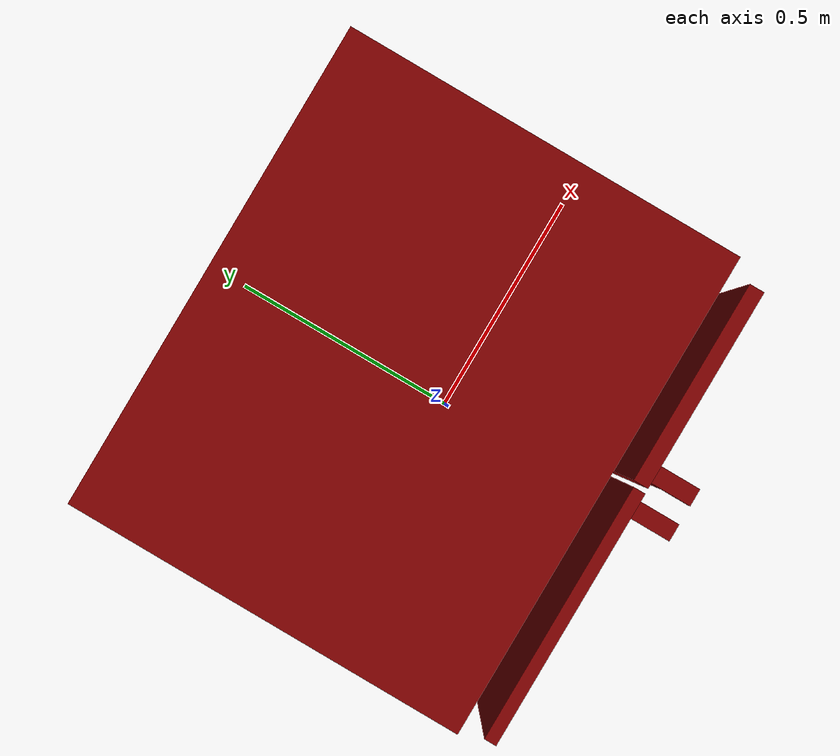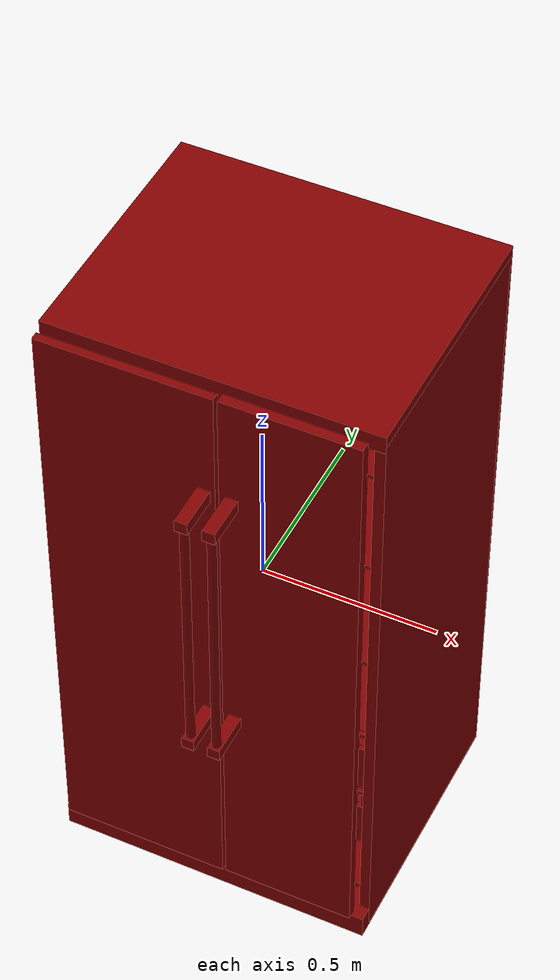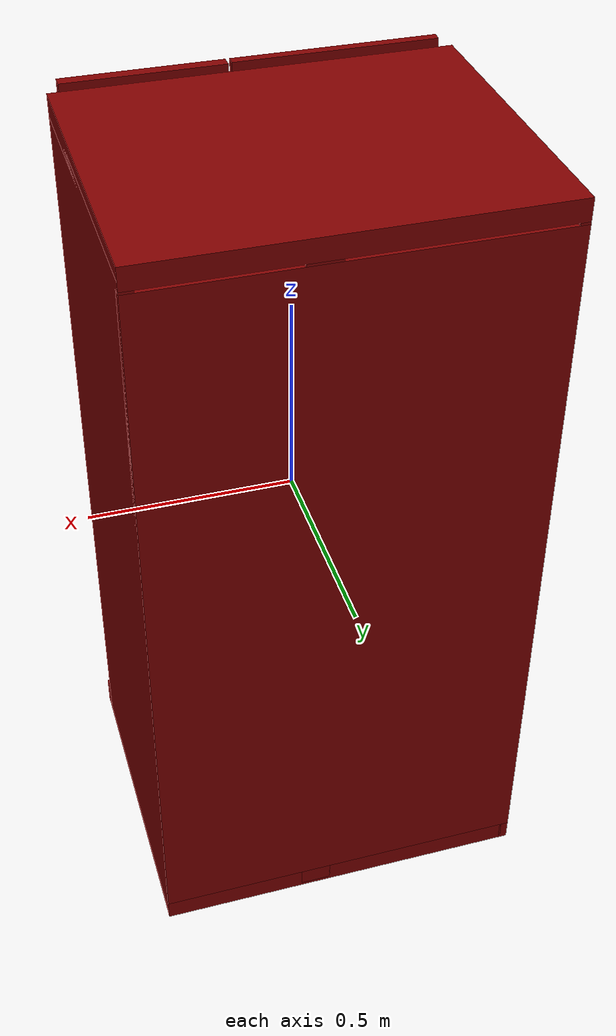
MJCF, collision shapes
<mujoco model="model">
  <compiler angle="radian"/>
  <asset>
    <mesh file="visuals/Body001.obj" name="Body001_vis"/>
    <mesh file="visuals/Body001_Clear.obj" name="Body001_Clear_vis"/>
    <mesh file="visuals/Body002.obj" name="Body002_vis"/>
    <mesh file="visuals/Door001.obj" name="Door001_vis"/>
    <mesh file="visuals/Door001_Clear.obj" name="Door001_Clear_vis"/>
    <mesh file="visuals/Door002.obj" name="Door002_vis"/>
    <mesh file="visuals/Drawer001.obj" name="Drawer001_vis"/>
    <mesh file="visuals/Drawer002.obj" name="Drawer002_vis"/>
    <texture file="visuals/T_BC001.png" name="Body001_material" type="2d"/>
    <material name="Body001_material" rgba="1 1 1 1.0" texture="Body001_material" shininess="2" specular="2"/>
    <material name="Body001_Clear_material" rgba="0.5 0.5 0.5 0.8373495936393738" shininess="0.4472135901451111" specular="0.3103448502657381"/>
    <texture file="visuals/T_BC001.png" name="Body002_material" type="2d"/>
    <material name="Body002_material" rgba="1 1 1 1.0" texture="Body002_material" shininess="0.4291412830352783" specular="0.3103448502657381"/>
    <texture file="visuals/T_BC001.png" name="Door001_material" type="2d"/>
    <material name="Door001_material" rgba="1 1 1 1.0" texture="Door001_material" shininess="2" specular="2"/>
    <material name="Door001_Clear_material" rgba="0.5 0.5 0.5 0.8373495936393738" shininess="0.4472135901451111" specular="0.3103448502657381"/>
    <texture file="visuals/T_BC001.png" name="Door002_material" type="2d"/>
    <material name="Door002_material" rgba="1 1 1 1.0" texture="Door002_material" shininess="2" specular="2"/>
    <texture file="visuals/T_BC001.png" name="Drawer001_material" type="2d"/>
    <material name="Drawer001_material" rgba="1 1 1 1.0" texture="Drawer001_material" shininess="0.4291412830352783" specular="0.3103448502657381"/>
    <texture file="visuals/T_BC001.png" name="Drawer002_material" type="2d"/>
    <material name="Drawer002_material" rgba="1 1 1 1.0" texture="Drawer002_material" shininess="0.4291412830352783" specular="0.3103448502657381"/>
  </asset>
  <default>
    <default class="visual">
      <geom conaffinity="0" contype="0" group="1" type="mesh"/>
    </default>
    <default class="collision">
      <geom group="0" rgba="0.5 0 0 0.5"/>
    </default>
    <default class="spawn">
      <geom group="0" rgba="1 1 1 0.5" contype="0" conaffinity="0"/>
      <site group="0" rgba="1 1 1 0.5"/>
    </default>
    <default class="region">
      <geom group="1" conaffinity="0" contype="0" rgba="0 1 0 0"/>
    </default>
  </default>
  <worldbody>
    <body>
      <body name="object">
        <geom mesh="Body001_vis" type="mesh" solimp="0.998 0.998 0.001" solref="0.001 1" density="100" friction="0.95 0.3 0.1" class="visual" material="Body001_material"/>
        <geom class="collision" type="box" pos="-3.14321368932724e-09 0.4564071595668793 -0.009512280113995075" size="0.4595121145248413 0.012431871145963669 0.8904070258140564" quat="1.0 0.0 0.0 0.0"/>
        <geom class="collision" type="box" pos="-0.44824686646461487 0.09380289912223816 -0.018721602857112885" size="0.011265265755355358 0.3750278353691101 0.925417423248291" quat="1.0 0.0 0.0 0.0"/>
        <geom class="collision" type="box" pos="0.4446006715297699 0.09380240738391876 -0.01872161403298378" size="0.014911462552845478 0.3750283718109131 0.9254194498062134" quat="1.0 0.0 0.0 0.0"/>
        <geom class="collision" type="box" pos="-3.14321368932724e-09 0.12114506214857101 -0.9064209461212158" size="0.4595121145248413 0.3476858139038086 0.045889873057603836" quat="1.0 0.0 0.0 0.0"/>
        <geom class="collision" type="box" pos="-3.14321368932724e-09 0.027813946828246117 -0.9153845310211182" size="0.4595121145248413 0.34951251745224 0.03692631796002388" quat="1.0 0.0 0.0 0.0"/>
        <geom class="collision" type="box" pos="0.07150134444236755 0.1211441233754158 -0.018721602857112885" size="0.037420690059661865 0.34768691658973694 0.9254255890846252" quat="1.0 0.0 0.0 0.0"/>
        <geom class="collision" type="box" pos="-3.14321368932724e-09 0.09380055218935013 0.9125056266784668" size="0.4595121145248413 0.37503060698509216 0.025865834206342697" quat="1.0 0.0 0.0 0.0"/>
        <geom class="collision" type="box" pos="-0.20137891173362732 0.1622304469347 0.5440387725830078" size="0.23340408504009247 0.22307993471622467 0.0060075754299759865" quat="1.0 0.0 0.0 0.0"/>
        <geom class="collision" type="box" pos="-0.20145899057388306 0.15250565111637115 0.22739364206790924" size="0.23340408504009247 0.22307993471622467 0.0060075754299759865" quat="1.0 0.0 0.0 0.0"/>
        <geom class="collision" type="box" pos="-0.20145899057388306 0.16216318309307098 -0.14820696413516998" size="0.23340408504009247 0.22307993471622467 0.0060075754299759865" quat="1.0 0.0 0.0 0.0"/>
        <geom class="collision" type="box" pos="-0.20145899057388306 0.16216318309307098 -0.4992179572582245" size="0.23340408504009247 0.22307993471622467 0.0060075754299759865" quat="1.0 0.0 0.0 0.0"/>
        <body name="Body001_Clear">
          <geom mesh="Body001_Clear_vis" type="mesh" solimp="0.998 0.998 0.001" solref="0.001 1" density="100" friction="0.95 0.3 0.1" class="visual" material="Body001_Clear_material"/>
          <geom class="collision" type="box" pos="0.2683153450489044 0.16216318309307098 0.22448477149009705" size="0.1583569496870041 0.22307993471622467 0.0060075754299759865" quat="1.0 0.0 0.0 0.0"/>
          <geom class="collision" type="box" pos="0.2683153450489044 0.16216318309307098 0.5535956621170044" size="0.1583569496870041 0.22307993471622467 0.0060075754299759865" quat="1.0 0.0 0.0 0.0"/>
          <geom class="collision" type="box" pos="0.2683153450489044 0.16216318309307098 -0.14546270668506622" size="0.1583569496870041 0.22307993471622467 0.0060075754299759865" quat="1.0 0.0 0.0 0.0"/>
        </body>
        <body name="Body002">
          <geom mesh="Body002_vis" type="mesh" solimp="0.998 0.998 0.001" solref="0.001 1" density="100" friction="0.95 0.3 0.1" class="visual" material="Body002_material"/>
        </body>
        <body name="Door001">
          <joint axis="0.0 0.0 -1.0" pos="-0.4357980489730835 -0.3228433430194855 0.04106411337852478" limited="true" name="Door001_joint" range="0.0 1.5707963267948966" type="hinge" damping="1" frictionloss="1" armature=".01" stiffness="0.05"/>
          <geom mesh="Door001_vis" type="mesh" solimp="0.998 0.998 0.001" solref="0.001 1" density="100" friction="0.95 0.3 0.1" class="visual" material="Door001_material"/>
          <geom class="collision" type="box" pos="-0.20054519176483154 -0.33403870463371277 0.038020651787519455" size="0.24239735305309296 0.0113755464553833 0.9025313258171082" quat="1.0 0.0 0.0 0.0"/>
          <geom class="collision" type="box" pos="0.011547052301466465 -0.4070349335670471 0.6107343435287476" size="0.01786612533032894 0.06237141415476799 0.01799345202744007" quat="1.0 0.0 0.0 0.0"/>
          <geom class="collision" type="cylinder" pos="0.011486728675663471 -0.4513147473335266 0.20231615006923676" size="0.012440330348908901 0.3878135085105896" quat="1.0 0.0 0.0 0.0"/>
          <geom class="collision" type="box" pos="0.011547052301466465 -0.4070349335670471 -0.20125801861286163" size="0.01786607690155506 0.06237130984663963 0.017993396148085594" quat="1.0 0.0 0.0 0.0"/>
          <body name="Door001_Clear">
            <geom mesh="Door001_Clear_vis" type="mesh" solimp="0.998 0.998 0.001" solref="0.001 1" density="100" friction="0.95 0.3 0.1" class="visual" material="Door001_Clear_material"/>
            <geom class="collision" type="box" pos="-0.20968464016914368 -0.32837197184562683 0.5243414640426636" size="0.21956045925617218 0.0032243402674794197 0.03886110335588455" quat="1.0 0.0 0.0 0.0"/>
            <geom class="collision" type="box" pos="-0.4241691827774048 -0.2773961126804352 0.5243414640426636" size="0.005123035982251167 0.054292209446430206 0.038861196488142014" quat="1.0 0.0 0.0 0.0"/>
            <geom class="collision" type="box" pos="-0.20968464016914368 -0.2263183891773224 0.5243414640426636" size="0.21956202387809753 0.003224362852051854 0.038861289620399475" quat="1.0 0.0 0.0 0.0"/>
            <geom class="collision" type="box" pos="0.005859863478690386 -0.2773961126804352 0.5243414640426636" size="0.005123060662299395 0.05429258570075035 0.03886138275265694" quat="1.0 0.0 0.0 0.0"/>
            <geom class="collision" type="box" pos="-0.2090894877910614 -0.2773961126804352 0.48891374468803406" size="0.2200864851474762 0.054292768239974976 0.0034381297882646322" quat="1.0 0.0 0.0 0.0"/>
            <geom class="collision" type="box" pos="-0.2090894877910614 -0.27739617228507996 -0.11951662600040436" size="0.22008799016475677 0.054293155670166016 0.0034381533041596413" quat="1.0 0.0 0.0 0.0"/>
            <geom class="collision" type="box" pos="0.005859863478690386 -0.2773961126804352 -0.08408892154693604" size="0.005123108625411987 0.05429333820939064 0.03886175900697708" quat="1.0 0.0 0.0 0.0"/>
            <geom class="collision" type="box" pos="-0.20968464016914368 -0.2263183891773224 -0.08408892154693604" size="0.21956665813922882 0.0032244313042610884 0.03886185213923454" quat="1.0 0.0 0.0 0.0"/>
            <geom class="collision" type="box" pos="-0.4241691827774048 -0.2773961126804352 -0.08408892154693604" size="0.005123132839798927 0.054293710738420486 0.038861945271492004" quat="1.0 0.0 0.0 0.0"/>
            <geom class="collision" type="box" pos="-0.4241691827774048 -0.27739617228507996 -0.4777262508869171" size="0.005123144946992397 0.054293904453516006 0.038862042129039764" quat="1.0 0.0 0.0 0.0"/>
            <geom class="collision" type="box" pos="-0.20968464016914368 -0.2263183891773224 -0.4777262508869171" size="0.21956899762153625 0.003224465297535062 0.038862135261297226" quat="1.0 0.0 0.0 0.0"/>
            <geom class="collision" type="box" pos="0.005859863478690386 -0.2773961126804352 -0.4777262508869171" size="0.005123169627040625 0.054294269531965256 0.03886222839355469" quat="1.0 0.0 0.0 0.0"/>
            <geom class="collision" type="box" pos="-0.2090894877910614 -0.2773961126804352 -0.5131539106369019" size="0.22009345889091492 0.054294463247060776 0.0034382352605462074" quat="1.0 0.0 0.0 0.0"/>
            <geom class="collision" type="box" pos="-0.20968464016914368 -0.32837197184562683 -0.4777262508869171" size="0.21957135200500488 0.003224499523639679 0.03886241465806961" quat="1.0 0.0 0.0 0.0"/>
          </body>
        </body>
        <body name="Door002">
          <joint axis="0.0 0.0 1.0" pos="0.43610501289367676 -0.3223499357700348 0.04106709361076355" limited="true" name="Door002_joint" range="0.0 1.5707963267948966" type="hinge" damping="1" frictionloss="1" armature=".01" stiffness="0.05"/>
          <geom mesh="Door002_vis" type="mesh" solimp="0.998 0.998 0.001" solref="0.001 1" density="100" friction="0.95 0.3 0.1" class="visual" material="Door002_material"/>
          <geom class="collision" type="box" pos="0.2401685267686844 -0.33090940117836 0.03962339088320732" size="0.18865086138248444 0.013930811546742916 0.9010894298553467" quat="1.0 0.0 0.0 0.0"/>
          <geom class="collision" type="cylinder" pos="0.08608739823102951 -0.4513147473335266 0.20231615006923676" size="0.012440330348908901 0.3878135085105896" quat="1.0 0.0 0.0 0.0"/>
          <geom class="collision" type="box" pos="0.0861477330327034 -0.4070349335670471 0.6107343435287476" size="0.01786602847278118 0.06237119436264038 0.017993342131376266" quat="1.0 0.0 0.0 0.0"/>
          <geom class="collision" type="box" pos="0.0861477330327034 -0.4070349335670471 -0.20125801861286163" size="0.01786598190665245 0.062371090054512024 0.01799328811466694" quat="1.0 0.0 0.0 0.0"/>
          <geom class="collision" type="box" pos="0.26309067010879517 -0.29323944449424744 0.0657227635383606" size="0.1313113123178482 0.03054649755358696 0.14165955781936646" quat="1.0 0.0 0.0 0.0"/>
        </body>
        <body name="Drawer001">
          <joint axis="0.0 -1.0 4.371138828673793e-08" pos="0.26866528391838074 0.1185639500617981 -0.48109862208366394" limited="true" name="Drawer001_joint" range="0.0 0.35" type="slide" damping="1" frictionloss="1" armature=".01" stiffness="0.05"/>
          <geom mesh="Drawer001_vis" type="mesh" solimp="0.998 0.998 0.001" solref="0.001 1" density="100" friction="0.95 0.3 0.1" class="visual" material="Drawer001_material"/>
          <geom class="collision" type="box" pos="0.2690414786338806 0.3423687815666199 -0.48084864020347595" size="0.1429375261068344 0.0034859655424952507 0.11240588128566742" quat="1.0 0.0 0.0 0.0"/>
          <geom class="collision" type="box" pos="0.27487707138061523 0.1189851388335228 -0.5893697142601013" size="0.13322673738002777 0.21919982135295868 0.003316199639812112" quat="1.0 0.0 0.0 0.0"/>
          <geom class="collision" type="box" pos="0.3923639953136444 0.11917797476053238 -0.4799943268299103" size="0.007964229211211205 0.21939313411712646 0.11326070129871368" quat="1.0 0.0 0.0 0.0"/>
          <geom class="collision" type="box" pos="0.1271767020225525 0.11901116371154785 -0.4799943268299103" size="0.004576840903609991 0.21922685205936432 0.11326095461845398" quat="1.0 0.0 0.0 0.0"/>
          <geom class="collision" type="box" pos="0.2690414786338806 -0.10984072089195251 -0.3739698529243469" size="0.1429389864206314 0.0059046964161098 0.00723676010966301" quat="1.0 0.0 0.0 0.0"/>
          <geom class="collision" type="box" pos="0.2690414786338806 -0.10487091541290283 -0.5139334201812744" size="0.1429389864206314 0.006506860256195068 0.07945471256971359" quat="1.0 0.0 0.0 0.0"/>
          <geom class="collision" type="box" pos="0.1525816023349762 -0.10487091541290283 -0.4033172130584717" size="0.026479121297597885 0.006506860256195068 0.034046825021505356" quat="1.0 0.0 0.0 0.0"/>
          <geom class="collision" type="box" pos="0.3843856453895569 -0.10487091541290283 -0.4033172130584717" size="0.026479121297597885 0.006506860256195068 0.034046825021505356" quat="1.0 0.0 0.0 0.0"/>
        </body>
        <body name="Drawer002">
          <joint axis="0.0 -1.0 4.371138828673793e-08" pos="0.25697803497314453 0.1185639500617981 -0.7232652902603149" limited="true" name="Drawer002_joint" range="0.0 0.35" type="slide" damping="1" frictionloss="1" armature=".01" stiffness="0.05"/>
          <geom mesh="Drawer002_vis" type="mesh" solimp="0.998 0.998 0.001" solref="0.001 1" density="100" friction="0.95 0.3 0.1" class="visual" material="Drawer002_material"/>
          <geom class="collision" type="box" pos="0.3750252425670624 -0.10487091541290283 -0.6490522027015686" size="0.026479121297597885 0.006506860256195068 0.034046825021505356" quat="1.0 0.0 0.0 0.0"/>
          <geom class="collision" type="box" pos="0.1432211995124817 -0.10487091541290283 -0.6490522027015686" size="0.026479121297597885 0.006506860256195068 0.034046825021505356" quat="1.0 0.0 0.0 0.0"/>
          <geom class="collision" type="box" pos="0.2596810758113861 -0.10487091541290283 -0.7564088106155396" size="0.1429389864206314 0.006506860256195068 0.0761951208114624" quat="1.0 0.0 0.0 0.0"/>
          <geom class="collision" type="box" pos="0.2596810758113861 -0.10674900561571121 -0.6197048425674438" size="0.1429389864206314 0.0059046964161098 0.00723676010966301" quat="1.0 0.0 0.0 0.0"/>
          <geom class="collision" type="box" pos="0.11781629920005798 0.11901116371154785 -0.722469687461853" size="0.004576840903609991 0.21922685205936432 0.11000137031078339" quat="1.0 0.0 0.0 0.0"/>
          <geom class="collision" type="box" pos="0.3830035924911499 0.11917797476053238 -0.722469687461853" size="0.007964229211211205 0.21939313411712646 0.1100011095404625" quat="1.0 0.0 0.0 0.0"/>
          <geom class="collision" type="box" pos="0.2655166685581207 0.1189851388335228 -0.8285855054855347" size="0.13322673738002777 0.21919982135295868 0.003316199639812112" quat="1.0 0.0 0.0 0.0"/>
          <geom class="collision" type="box" pos="0.2596810758113861 0.3423687815666199 -0.7233240008354187" size="0.1429375261068344 0.0034859655424952507 0.10914629697799683" quat="1.0 0.0 0.0 0.0"/>
        </body>
        <geom class="region" name="reg_main" type="box" pos="0.0 0.061712488532066345 0.0001233220100402832" size="0.4595121145248413 0.407126784324646 0.9524351954460144"/>
      </body>
    </body>
  </worldbody>
  <actuator>
    <motor name="Door001_joint_actuator" joint="Door001_joint" gear="50"/>
    <motor name="Door002_joint_actuator" joint="Door002_joint" gear="50"/>
    <motor name="Drawer001_joint_actuator" joint="Drawer001_joint" gear="50"/>
    <motor name="Drawer002_joint_actuator" joint="Drawer002_joint" gear="50"/>
  </actuator>
</mujoco>
